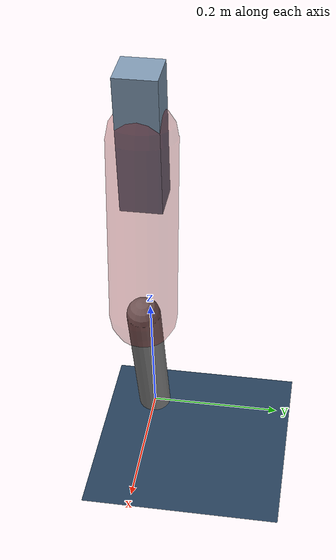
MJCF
<mujoco model="Hopper2D">
	<compiler inertiafromgeom="true" angle="radian" />
	<option timestep="0.001" integrator="implicit" cone="elliptic" solver="Newton" tolerance="1e-10" />

	<default>
		<geom contype="1" conaffinity="1" condim="3" friction="2 0.005 0.0001" solref="0.005 1" />
		<joint limited="true" damping="0.1" />
	</default>

	<asset>
		<texture name="skybox" type="skybox" builtin="gradient" rgb1=".4 .6 .8" rgb2="0 0 0" width="800" height="800" />
		<texture name="grid" type="2d" builtin="checker" rgb1=".1 .2 .3" rgb2=".2 .3 .4" width="300" height="300" mark="edge" markrgb=".2 .3 .4" />
		<material name="ground" texture="grid" texrepeat="1 1" texuniform="true" reflectance="0.1" />
		<material name="leg" rgba="0.5 0.6 0.7 1" />
	</asset>

	<worldbody>

		<geom name="floor" type="plane" size="5 5 0.25" material="ground" />

		<light directional="false" diffuse="0.8 0.8 0.8" specular="0.3 0.3 0.3" pos="0 0 2" dir="0 0 -1" />
		<light mode="targetbodycom" target="base" directional="false" diffuse="0.8 0.8 0.8" specular="0.3 0.3 0.3" pos="0 0 2" dir="0 0 -1" />

		<camera name="fixed" pos="0 -2 1" xyaxes="1 0 0 0 0 1" />
		<camera name="tracking" mode="trackcom" pos="0 -3 1" />

		<body name="root" pos="0 0 0.4953417937595439">
			<joint name="slide_x" type="slide" axis="1 0 0" range="-100 100" />
			<joint name="slide_z" type="slide" axis="0 0 1" range="0 10" />

			<body name="base" pos="0 0 0">
				<geom name="torso" type="box" size="0.03 0.03 0.1" mass="1.805" material="leg" />

				<body name="link1" pos="0 0 0" euler="0 1.3858697721904407 0">
					<joint type="hinge" axis="0 -1 0" pos="0 0 0" name="hinge1" limited="true" range="-3.14 3.14" stiffness="0" damping="0.1" />
					<geom name="thigh" type="capsule" fromto="0 0 0 0.27125121997272345 0 0" size="0.05" rgba="0.5 0 0 0.3" mass="0.9119531719290809" />

					<body name="link2" pos="0.27125121997272345 0 0" euler="0 0.3996358671135752 0">
						<joint type="hinge" axis="0 -1 0" pos="0 0 0" name="hinge2" limited="true" range="-3.14 3.14" stiffness="0" damping="0.1" />
						<geom name="shank" type="capsule" fromto="0 0 0 0.2340905737868204 0 0" size="0.025" mass="0.4293724590294563" />

					</body>
				</body>
			</body>
		</body>
	</worldbody>

	<actuator>
		<motor name="torque1" joint="hinge1" ctrlrange="-54.36107739379272 54.36107739379272" ctrllimited="true" gear="1" />
		<motor name="torque2" joint="hinge2" ctrlrange="-69.27631381858055 69.27631381858055" ctrllimited="true" gear="1" />
	</actuator>
</mujoco>
